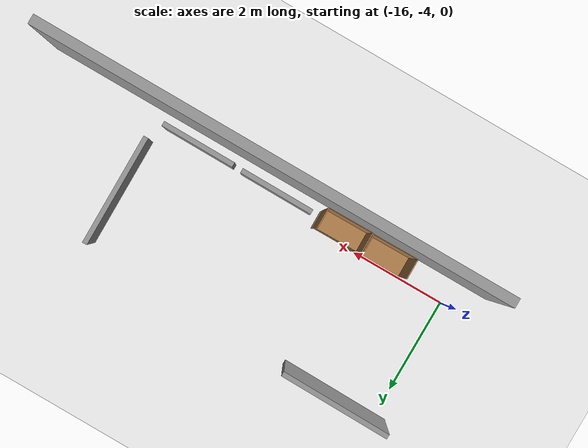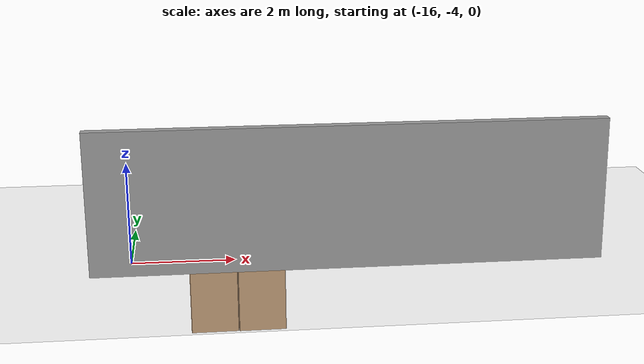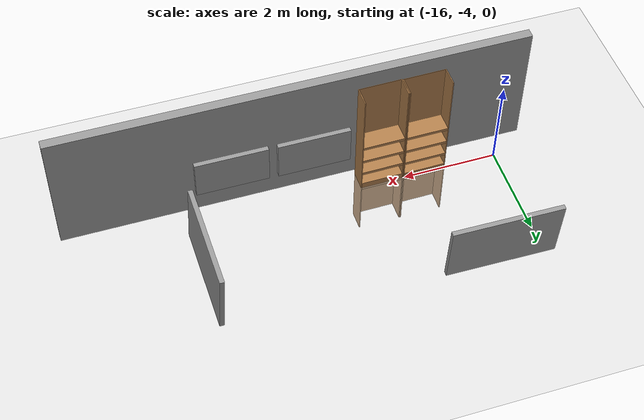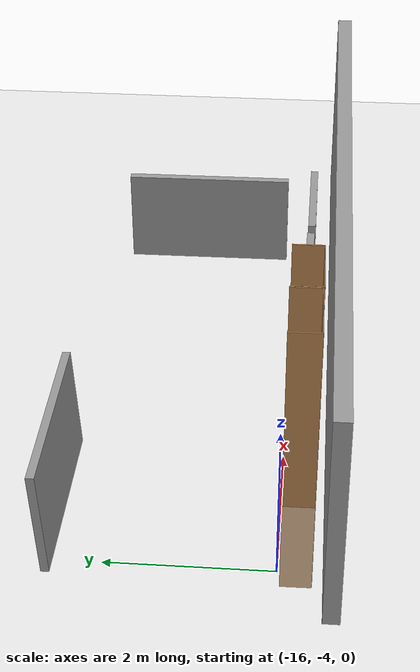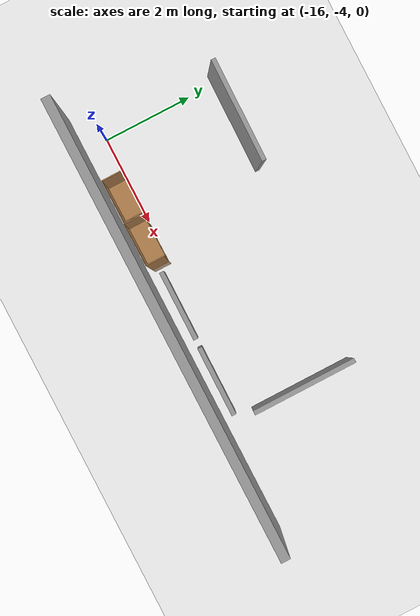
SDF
<sdf version="1.6">
 <world name="default">
  <model name="ground_plane">
   <static>1</static>
   <link name="link">
    <collision name="collision">
     <geometry><plane><normal>0 0 1</normal><size>100 100</size></plane></geometry>
     <surface><friction><ode><mu>100</mu><mu2>50</mu2></ode></friction></surface>
    </collision>
    <visual name="visual">
     <cast_shadows>0</cast_shadows>
     <geometry><plane><normal>0 0 1</normal><size>100 100</size></plane></geometry>
     <material>
      <script><uri>file://media/materials/scripts/gazebo.material</uri><name>Gazebo/Grey</name></script>
     </material>
    </visual>
   </link>
  </model>
  <model name="grey_wall_clone_clone_0">
   <link name="link">
    <pose>1.17776 -0.11801 1.4 0 -0 0</pose>
    <inertial>
     <mass>1.16346</mass>
     <inertia><ixx>0.764005</ixx><ixy>0</ixy><ixz>0</ixz><iyy>10.2423</iyy><iyz>0</iyz><izz>9.48609</izz></inertia>
    </inertial>
    <visual name="visual">
     <cast_shadows>0</cast_shadows>
     <geometry><box><size>9.8894 0.2 2.8</size></box></geometry>
     <material>
      <script>
       <uri>model://grey_wall/materials/scripts</uri>
       <uri>model://grey_wall/materials/textures</uri>
       <name>vrc/grey_wall</name>
      </script>
      <shader type="vertex"><normal_map>__default__</normal_map></shader>
      <ambient>1 1 1 1</ambient>
      <diffuse>1 1 1 1</diffuse>
      <specular>0 0 0 1</specular>
      <emissive>0 0 0 1</emissive>
     </material>
    </visual>
    <collision name="collision">
     <geometry><box><size>9.8894 0.2 2.8</size></box></geometry>
     <surface>
      <friction>
       <ode><mu>1</mu><mu2>1</mu2><fdir1>0 0 0</fdir1><slip1>0</slip1><slip2>0</slip2></ode>
       <torsional>
        <coefficient>1</coefficient>
        <patch_radius>0</patch_radius>
        <surface_radius>0</surface_radius>
        <use_patch_radius>1</use_patch_radius>
        <ode><slip>0</slip></ode>
       </torsional>
      </friction>
      <bounce><restitution_coefficient>0</restitution_coefficient><threshold>1e+06</threshold></bounce>
      <contact>
       <collide_without_contact>0</collide_without_contact>
       <collide_without_contact_bitmask>1</collide_without_contact_bitmask>
       <collide_bitmask>1</collide_bitmask>
       <ode>
        <soft_cfm>0</soft_cfm>
        <soft_erp>0.2</soft_erp>
        <kp>1e+13</kp>
        <kd>1</kd>
        <max_vel>0.01</max_vel>
        <min_depth>0</min_depth>
       </ode>
       <bullet>
        <split_impulse>1</split_impulse>
        <split_impulse_penetration_threshold>-0.01</split_impulse_penetration_threshold>
        <soft_cfm>0</soft_cfm>
        <soft_erp>0.2</soft_erp>
        <kp>1e+13</kp>
        <kd>1</kd>
       </bullet>
      </contact>
     </surface>
    </collision>
   </link>
   <static>1</static>
   <pose>-12.9856 -4.50194 0 0 -0 0</pose>
  </model>
  <model name="unit_box_clone_0_clone_clone_0">
   <link name="link">
    <inertial>
     <mass>0.724105</mass>
     <inertia>
      <ixx>0.0453015</ixx>
      <ixy>0</ixy>
      <ixz>0</ixz>
      <iyy>0.183143</iyy>
      <iyz>0</iyz>
      <izz>0.139048</izz>
     </inertia>
    </inertial>
    <pose>0.262043 -0.534144 0 0 -0 1.59038</pose>
    <visual name="visual">
     <geometry><box><size>1.5147 0.1 0.860665</size></box></geometry>
     <material>
      <script><name>Gazebo/Grey</name><uri>file://media/materials/scripts/gazebo.material</uri></script>
      <shader type="vertex"><normal_map>__default__</normal_map></shader>
      <ambient>0 0 0 1</ambient>
      <diffuse>0 0 0 1</diffuse>
      <specular>0.01 0.01 0.01 1</specular>
      <emissive>0 0 0 1</emissive>
     </material>
    </visual>
    <collision name="collision">
     <geometry><box><size>1.5147 0.1 0.860665</size></box></geometry>
     <surface>
      <friction>
       <ode><mu>1</mu><mu2>1</mu2><fdir1>0 0 0</fdir1><slip1>0</slip1><slip2>0</slip2></ode>
       <torsional>
        <coefficient>1</coefficient>
        <patch_radius>0</patch_radius>
        <surface_radius>0</surface_radius>
        <use_patch_radius>1</use_patch_radius>
        <ode><slip>0</slip></ode>
       </torsional>
      </friction>
      <bounce><restitution_coefficient>0</restitution_coefficient><threshold>1e+06</threshold></bounce>
      <contact>
       <collide_without_contact>0</collide_without_contact>
       <collide_without_contact_bitmask>1</collide_without_contact_bitmask>
       <collide_bitmask>1</collide_bitmask>
       <ode>
        <soft_cfm>0</soft_cfm>
        <soft_erp>0.2</soft_erp>
        <kp>1e+13</kp>
        <kd>1</kd>
        <max_vel>0.01</max_vel>
        <min_depth>0</min_depth>
       </ode>
       <bullet>
        <split_impulse>1</split_impulse>
        <split_impulse_penetration_threshold>-0.01</split_impulse_penetration_threshold>
        <soft_cfm>0</soft_cfm>
        <soft_erp>0.2</soft_erp>
        <kp>1e+13</kp>
        <kd>1</kd>
       </bullet>
      </contact>
     </surface>
    </collision>
   </link>
   <static>1</static>
   <pose>-9.85653 -3.99567 1.22283 0.000117 -0.002185 -1.59437</pose>
  </model>
  <model name="unit_box_clone_0_clone_clone_clone_0_clone_clone">
   <link name="link">
    <inertial>
     <mass>1.76092</mass>
     <inertia><ixx>0.27833</ixx><ixy>0</ixy><ixz>0</ixz><iyy>1.05856</iyy><iyz>0</iyz><izz>0.783161</izz></inertia>
    </inertial>
    <pose>0.262043 -0.534144 -0 0 -0 1.59038</pose>
    <visual name="visual">
     <geometry><box><size>2.30802 0.1 1.37358</size></box></geometry>
     <material>
      <script><name>Gazebo/Grey</name><uri>file://media/materials/scripts/gazebo.material</uri></script>
      <shader type="vertex"><normal_map>__default__</normal_map></shader>
      <ambient>0.8 0.8 0.8 1</ambient>
      <diffuse>0 0 0 1</diffuse>
      <specular>0.01 0.01 0.01 1</specular>
      <emissive>0 0 0 1</emissive>
     </material>
    </visual>
    <collision name="collision">
     <geometry><box><size>2.30802 0.1 1.37358</size></box></geometry>
     <surface>
      <friction>
       <ode><mu>1</mu><mu2>1</mu2><fdir1>0 0 0</fdir1><slip1>0</slip1><slip2>0</slip2></ode>
       <torsional>
        <coefficient>1</coefficient>
        <patch_radius>0</patch_radius>
        <surface_radius>0</surface_radius>
        <use_patch_radius>1</use_patch_radius>
        <ode><slip>0</slip></ode>
       </torsional>
      </friction>
      <bounce><restitution_coefficient>0</restitution_coefficient><threshold>1e+06</threshold></bounce>
      <contact>
       <collide_without_contact>0</collide_without_contact>
       <collide_without_contact_bitmask>1</collide_without_contact_bitmask>
       <collide_bitmask>1</collide_bitmask>
       <ode>
        <soft_cfm>0</soft_cfm>
        <soft_erp>0.2</soft_erp>
        <kp>1e+13</kp>
        <kd>1</kd>
        <max_vel>0.01</max_vel>
        <min_depth>0</min_depth>
       </ode>
       <bullet>
        <split_impulse>1</split_impulse>
        <split_impulse_penetration_threshold>-0.01</split_impulse_penetration_threshold>
        <soft_cfm>0</soft_cfm>
        <soft_erp>0.2</soft_erp>
        <kp>1e+13</kp>
        <kd>1</kd>
       </bullet>
      </contact>
     </surface>
    </collision>
   </link>
   <static>1</static>
   <pose>-9.68625 -2.18324 0.688928 0.000802 -0.047021 -0.014366</pose>
  </model>
  <model name="bookshelf_0">
   <link name="link">
    <inertial>
     <mass>3.22474</mass>
     <inertia>
      <ixx>0.0441157</ixx>
      <ixy>0</ixy>
      <ixz>0</ixz>
      <iyy>0.209222</iyy>
      <iyz>0</iyz>
      <izz>0.2511</izz>
     </inertia>
    </inertial>
    <pose>0 0 0 0 0 -3.13313</pose>
    <visual name="visual1">
     <pose>0 0.005 0.6 0 -0 0</pose>
     <geometry><box><size>0.9 0.01 3.8752</size></box></geometry>
     <material>
      <script><uri>file://media/materials/scripts/gazebo.material</uri><name>Gazebo/Wood</name></script>
     </material>
    </visual>
    <visual name="visual2">
     <pose>0.45 -0.195 0.6 0 -0 0</pose>
     <geometry><box><size>0.02 0.4 3.8752</size></box></geometry>
     <material>
      <script><uri>file://media/materials/scripts/gazebo.material</uri><name>Gazebo/Wood</name></script>
     </material>
    </visual>
    <visual name="visual3">
     <pose>-0.45 -0.195 0.6 0 -0 0</pose>
     <geometry><box><size>0.02 0.4 3.8752</size></box></geometry>
     <material>
      <script><uri>file://media/materials/scripts/gazebo.material</uri><name>Gazebo/Wood</name></script>
     </material>
    </visual>
    <visual name="visual4">
     <pose>0 -0.195 0.03 0 -0 0</pose>
     <geometry><box><size>0.88 0.4 0.193307</size></box></geometry>
     <material>
      <script><uri>file://media/materials/scripts/gazebo.material</uri><name>Gazebo/Wood</name></script>
     </material>
    </visual>
    <visual name="visual5">
     <pose>0 -0.195 1.19 0 -0 0</pose>
     <geometry><box><size>0.88 0.4 0.064536</size></box></geometry>
     <material>
      <script><uri>file://media/materials/scripts/gazebo.material</uri><name>Gazebo/Wood</name></script>
     </material>
    </visual>
    <visual name="visual6">
     <pose>0 -0.195 0.43 0 -0 0</pose>
     <geometry><box><size>0.88 0.4 0.064536</size></box></geometry>
     <material>
      <script><uri>file://media/materials/scripts/gazebo.material</uri><name>Gazebo/Wood</name></script>
     </material>
    </visual>
    <visual name="visual7">
     <pose>0 -0.195 0.8 0 -0 0</pose>
     <geometry><box><size>0.88 0.4 0.064536</size></box></geometry>
     <material>
      <script><uri>file://media/materials/scripts/gazebo.material</uri><name>Gazebo/Wood</name></script>
     </material>
    </visual>
    <collision name="back">
     <pose>0 0.005 0.6 0 -0 0</pose>
     <geometry><box><size>0.9 0.01 3.8752</size></box></geometry>
     <surface>
      <friction>
       <ode><mu>1</mu><mu2>1</mu2><fdir1>0 0 0</fdir1><slip1>0</slip1><slip2>0</slip2></ode>
       <torsional>
        <coefficient>1</coefficient>
        <patch_radius>0</patch_radius>
        <surface_radius>0</surface_radius>
        <use_patch_radius>1</use_patch_radius>
        <ode><slip>0</slip></ode>
       </torsional>
      </friction>
      <bounce><restitution_coefficient>0</restitution_coefficient><threshold>1e+06</threshold></bounce>
      <contact>
       <collide_without_contact>0</collide_without_contact>
       <collide_without_contact_bitmask>1</collide_without_contact_bitmask>
       <collide_bitmask>1</collide_bitmask>
       <ode>
        <soft_cfm>0</soft_cfm>
        <soft_erp>0.2</soft_erp>
        <kp>1e+13</kp>
        <kd>1</kd>
        <max_vel>0.01</max_vel>
        <min_depth>0</min_depth>
       </ode>
       <bullet>
        <split_impulse>1</split_impulse>
        <split_impulse_penetration_threshold>-0.01</split_impulse_penetration_threshold>
        <soft_cfm>0</soft_cfm>
        <soft_erp>0.2</soft_erp>
        <kp>1e+13</kp>
        <kd>1</kd>
       </bullet>
      </contact>
     </surface>
    </collision>
    <collision name="left_side">
     <pose>0.45 -0.195 0.6 0 -0 0</pose>
     <geometry><box><size>0.02 0.4 3.8752</size></box></geometry>
     <surface>
      <friction>
       <ode><mu>1</mu><mu2>1</mu2><fdir1>0 0 0</fdir1><slip1>0</slip1><slip2>0</slip2></ode>
       <torsional>
        <coefficient>1</coefficient>
        <patch_radius>0</patch_radius>
        <surface_radius>0</surface_radius>
        <use_patch_radius>1</use_patch_radius>
        <ode><slip>0</slip></ode>
       </torsional>
      </friction>
      <bounce><restitution_coefficient>0</restitution_coefficient><threshold>1e+06</threshold></bounce>
      <contact>
       <collide_without_contact>0</collide_without_contact>
       <collide_without_contact_bitmask>1</collide_without_contact_bitmask>
       <collide_bitmask>1</collide_bitmask>
       <ode>
        <soft_cfm>0</soft_cfm>
        <soft_erp>0.2</soft_erp>
        <kp>1e+13</kp>
        <kd>1</kd>
        <max_vel>0.01</max_vel>
        <min_depth>0</min_depth>
       </ode>
       <bullet>
        <split_impulse>1</split_impulse>
        <split_impulse_penetration_threshold>-0.01</split_impulse_penetration_threshold>
        <soft_cfm>0</soft_cfm>
        <soft_erp>0.2</soft_erp>
        <kp>1e+13</kp>
        <kd>1</kd>
       </bullet>
      </contact>
     </surface>
    </collision>
    <collision name="right_side">
     <pose>-0.45 -0.195 0.6 0 -0 0</pose>
     <geometry><box><size>0.02 0.4 3.8752</size></box></geometry>
     <surface>
      <friction>
       <ode><mu>1</mu><mu2>1</mu2><fdir1>0 0 0</fdir1><slip1>0</slip1><slip2>0</slip2></ode>
       <torsional>
        <coefficient>1</coefficient>
        <patch_radius>0</patch_radius>
        <surface_radius>0</surface_radius>
        <use_patch_radius>1</use_patch_radius>
        <ode><slip>0</slip></ode>
       </torsional>
      </friction>
      <bounce><restitution_coefficient>0</restitution_coefficient><threshold>1e+06</threshold></bounce>
      <contact>
       <collide_without_contact>0</collide_without_contact>
       <collide_without_contact_bitmask>1</collide_without_contact_bitmask>
       <collide_bitmask>1</collide_bitmask>
       <ode>
        <soft_cfm>0</soft_cfm>
        <soft_erp>0.2</soft_erp>
        <kp>1e+13</kp>
        <kd>1</kd>
        <max_vel>0.01</max_vel>
        <min_depth>0</min_depth>
       </ode>
       <bullet>
        <split_impulse>1</split_impulse>
        <split_impulse_penetration_threshold>-0.01</split_impulse_penetration_threshold>
        <soft_cfm>0</soft_cfm>
        <soft_erp>0.2</soft_erp>
        <kp>1e+13</kp>
        <kd>1</kd>
       </bullet>
      </contact>
     </surface>
    </collision>
    <collision name="bottom">
     <pose>0 -0.195 0.03 0 -0 0</pose>
     <geometry><box><size>0.88 0.4 0.193307</size></box></geometry>
     <surface>
      <friction>
       <ode><mu>1</mu><mu2>1</mu2><fdir1>0 0 0</fdir1><slip1>0</slip1><slip2>0</slip2></ode>
       <torsional>
        <coefficient>1</coefficient>
        <patch_radius>0</patch_radius>
        <surface_radius>0</surface_radius>
        <use_patch_radius>1</use_patch_radius>
        <ode><slip>0</slip></ode>
       </torsional>
      </friction>
      <bounce><restitution_coefficient>0</restitution_coefficient><threshold>1e+06</threshold></bounce>
      <contact>
       <collide_without_contact>0</collide_without_contact>
       <collide_without_contact_bitmask>1</collide_without_contact_bitmask>
       <collide_bitmask>1</collide_bitmask>
       <ode>
        <soft_cfm>0</soft_cfm>
        <soft_erp>0.2</soft_erp>
        <kp>1e+13</kp>
        <kd>1</kd>
        <max_vel>0.01</max_vel>
        <min_depth>0</min_depth>
       </ode>
       <bullet>
        <split_impulse>1</split_impulse>
        <split_impulse_penetration_threshold>-0.01</split_impulse_penetration_threshold>
        <soft_cfm>0</soft_cfm>
        <soft_erp>0.2</soft_erp>
        <kp>1e+13</kp>
        <kd>1</kd>
       </bullet>
      </contact>
     </surface>
    </collision>
    <collision name="top">
     <pose>0 -0.195 1.19 0 -0 0</pose>
     <geometry><box><size>0.88 0.4 0.064536</size></box></geometry>
     <surface>
      <friction>
       <ode><mu>1</mu><mu2>1</mu2><fdir1>0 0 0</fdir1><slip1>0</slip1><slip2>0</slip2></ode>
       <torsional>
        <coefficient>1</coefficient>
        <patch_radius>0</patch_radius>
        <surface_radius>0</surface_radius>
        <use_patch_radius>1</use_patch_radius>
        <ode><slip>0</slip></ode>
       </torsional>
      </friction>
      <bounce><restitution_coefficient>0</restitution_coefficient><threshold>1e+06</threshold></bounce>
      <contact>
       <collide_without_contact>0</collide_without_contact>
       <collide_without_contact_bitmask>1</collide_without_contact_bitmask>
       <collide_bitmask>1</collide_bitmask>
       <ode>
        <soft_cfm>0</soft_cfm>
        <soft_erp>0.2</soft_erp>
        <kp>1e+13</kp>
        <kd>1</kd>
        <max_vel>0.01</max_vel>
        <min_depth>0</min_depth>
       </ode>
       <bullet>
        <split_impulse>1</split_impulse>
        <split_impulse_penetration_threshold>-0.01</split_impulse_penetration_threshold>
        <soft_cfm>0</soft_cfm>
        <soft_erp>0.2</soft_erp>
        <kp>1e+13</kp>
        <kd>1</kd>
       </bullet>
      </contact>
     </surface>
    </collision>
    <collision name="low_shelf">
     <pose>0 -0.195 0.43 0 -0 0</pose>
     <geometry><box><size>0.88 0.4 0.064536</size></box></geometry>
     <surface>
      <friction>
       <ode><mu>1</mu><mu2>1</mu2><fdir1>0 0 0</fdir1><slip1>0</slip1><slip2>0</slip2></ode>
       <torsional>
        <coefficient>1</coefficient>
        <patch_radius>0</patch_radius>
        <surface_radius>0</surface_radius>
        <use_patch_radius>1</use_patch_radius>
        <ode><slip>0</slip></ode>
       </torsional>
      </friction>
      <bounce><restitution_coefficient>0</restitution_coefficient><threshold>1e+06</threshold></bounce>
      <contact>
       <collide_without_contact>0</collide_without_contact>
       <collide_without_contact_bitmask>1</collide_without_contact_bitmask>
       <collide_bitmask>1</collide_bitmask>
       <ode>
        <soft_cfm>0</soft_cfm>
        <soft_erp>0.2</soft_erp>
        <kp>1e+13</kp>
        <kd>1</kd>
        <max_vel>0.01</max_vel>
        <min_depth>0</min_depth>
       </ode>
       <bullet>
        <split_impulse>1</split_impulse>
        <split_impulse_penetration_threshold>-0.01</split_impulse_penetration_threshold>
        <soft_cfm>0</soft_cfm>
        <soft_erp>0.2</soft_erp>
        <kp>1e+13</kp>
        <kd>1</kd>
       </bullet>
      </contact>
     </surface>
    </collision>
    <collision name="high_shelf">
     <pose>0 -0.195 0.8 0 -0 0</pose>
     <geometry><box><size>0.88 0.4 0.064536</size></box></geometry>
     <surface>
      <friction>
       <ode><mu>1</mu><mu2>1</mu2><fdir1>0 0 0</fdir1><slip1>0</slip1><slip2>0</slip2></ode>
       <torsional>
        <coefficient>1</coefficient>
        <patch_radius>0</patch_radius>
        <surface_radius>0</surface_radius>
        <use_patch_radius>1</use_patch_radius>
        <ode><slip>0</slip></ode>
       </torsional>
      </friction>
      <bounce><restitution_coefficient>0</restitution_coefficient><threshold>1e+06</threshold></bounce>
      <contact>
       <collide_without_contact>0</collide_without_contact>
       <collide_without_contact_bitmask>1</collide_without_contact_bitmask>
       <collide_bitmask>1</collide_bitmask>
       <ode>
        <soft_cfm>0</soft_cfm>
        <soft_erp>0.2</soft_erp>
        <kp>1e+13</kp>
        <kd>1</kd>
        <max_vel>0.01</max_vel>
        <min_depth>0</min_depth>
       </ode>
       <bullet>
        <split_impulse>1</split_impulse>
        <split_impulse_penetration_threshold>-0.01</split_impulse_penetration_threshold>
        <soft_cfm>0</soft_cfm>
        <soft_erp>0.2</soft_erp>
        <kp>1e+13</kp>
        <kd>1</kd>
       </bullet>
      </contact>
     </surface>
    </collision>
   </link>
   <static>1</static>
   <pose>-13.5081 -4.40794 0 0 -0 0</pose>
  </model>
  <model name="bookshelf_0_clone">
   <link name="link">
    <inertial>
     <mass>3.22474</mass>
     <inertia>
      <ixx>0.0441157</ixx>
      <ixy>0</ixy>
      <ixz>0</ixz>
      <iyy>0.209222</iyy>
      <iyz>0</iyz>
      <izz>0.2511</izz>
     </inertia>
    </inertial>
    <pose>0 0 0 0 0 -3.13313</pose>
    <visual name="visual1">
     <pose>0 0.005 0.6 0 -0 0</pose>
     <geometry><box><size>0.9 0.01 3.8752</size></box></geometry>
     <material>
      <script><uri>file://media/materials/scripts/gazebo.material</uri><name>Gazebo/Wood</name></script>
     </material>
    </visual>
    <visual name="visual2">
     <pose>0.45 -0.195 0.6 0 -0 0</pose>
     <geometry><box><size>0.02 0.4 3.8752</size></box></geometry>
     <material>
      <script><uri>file://media/materials/scripts/gazebo.material</uri><name>Gazebo/Wood</name></script>
     </material>
    </visual>
    <visual name="visual3">
     <pose>-0.45 -0.195 0.6 0 -0 0</pose>
     <geometry><box><size>0.02 0.4 3.8752</size></box></geometry>
     <material>
      <script><uri>file://media/materials/scripts/gazebo.material</uri><name>Gazebo/Wood</name></script>
     </material>
    </visual>
    <visual name="visual4">
     <pose>0 -0.195 0.03 0 -0 0</pose>
     <geometry><box><size>0.88 0.4 0.193307</size></box></geometry>
     <material>
      <script><uri>file://media/materials/scripts/gazebo.material</uri><name>Gazebo/Wood</name></script>
     </material>
    </visual>
    <visual name="visual5">
     <pose>0 -0.195 1.19 0 -0 0</pose>
     <geometry><box><size>0.88 0.4 0.064536</size></box></geometry>
     <material>
      <script><uri>file://media/materials/scripts/gazebo.material</uri><name>Gazebo/Wood</name></script>
     </material>
    </visual>
    <visual name="visual6">
     <pose>0 -0.195 0.43 0 -0 0</pose>
     <geometry><box><size>0.88 0.4 0.064536</size></box></geometry>
     <material>
      <script><uri>file://media/materials/scripts/gazebo.material</uri><name>Gazebo/Wood</name></script>
     </material>
    </visual>
    <visual name="visual7">
     <pose>0 -0.195 0.8 0 -0 0</pose>
     <geometry><box><size>0.88 0.4 0.064536</size></box></geometry>
     <material>
      <script><uri>file://media/materials/scripts/gazebo.material</uri><name>Gazebo/Wood</name></script>
     </material>
    </visual>
    <collision name="back">
     <pose>0 0.005 0.6 0 -0 0</pose>
     <geometry><box><size>0.9 0.01 3.8752</size></box></geometry>
     <surface>
      <friction>
       <ode><mu>1</mu><mu2>1</mu2><fdir1>0 0 0</fdir1><slip1>0</slip1><slip2>0</slip2></ode>
       <torsional>
        <coefficient>1</coefficient>
        <patch_radius>0</patch_radius>
        <surface_radius>0</surface_radius>
        <use_patch_radius>1</use_patch_radius>
        <ode><slip>0</slip></ode>
       </torsional>
      </friction>
      <bounce><restitution_coefficient>0</restitution_coefficient><threshold>1e+06</threshold></bounce>
      <contact>
       <collide_without_contact>0</collide_without_contact>
       <collide_without_contact_bitmask>1</collide_without_contact_bitmask>
       <collide_bitmask>1</collide_bitmask>
       <ode>
        <soft_cfm>0</soft_cfm>
        <soft_erp>0.2</soft_erp>
        <kp>1e+13</kp>
        <kd>1</kd>
        <max_vel>0.01</max_vel>
        <min_depth>0</min_depth>
       </ode>
       <bullet>
        <split_impulse>1</split_impulse>
        <split_impulse_penetration_threshold>-0.01</split_impulse_penetration_threshold>
        <soft_cfm>0</soft_cfm>
        <soft_erp>0.2</soft_erp>
        <kp>1e+13</kp>
        <kd>1</kd>
       </bullet>
      </contact>
     </surface>
    </collision>
    <collision name="left_side">
     <pose>0.45 -0.195 0.6 0 -0 0</pose>
     <geometry><box><size>0.02 0.4 3.8752</size></box></geometry>
     <surface>
      <friction>
       <ode><mu>1</mu><mu2>1</mu2><fdir1>0 0 0</fdir1><slip1>0</slip1><slip2>0</slip2></ode>
       <torsional>
        <coefficient>1</coefficient>
        <patch_radius>0</patch_radius>
        <surface_radius>0</surface_radius>
        <use_patch_radius>1</use_patch_radius>
        <ode><slip>0</slip></ode>
       </torsional>
      </friction>
      <bounce><restitution_coefficient>0</restitution_coefficient><threshold>1e+06</threshold></bounce>
      <contact>
       <collide_without_contact>0</collide_without_contact>
       <collide_without_contact_bitmask>1</collide_without_contact_bitmask>
       <collide_bitmask>1</collide_bitmask>
       <ode>
        <soft_cfm>0</soft_cfm>
        <soft_erp>0.2</soft_erp>
        <kp>1e+13</kp>
        <kd>1</kd>
        <max_vel>0.01</max_vel>
        <min_depth>0</min_depth>
       </ode>
       <bullet>
        <split_impulse>1</split_impulse>
        <split_impulse_penetration_threshold>-0.01</split_impulse_penetration_threshold>
        <soft_cfm>0</soft_cfm>
        <soft_erp>0.2</soft_erp>
        <kp>1e+13</kp>
        <kd>1</kd>
       </bullet>
      </contact>
     </surface>
    </collision>
    <collision name="right_side">
     <pose>-0.45 -0.195 0.6 0 -0 0</pose>
     <geometry><box><size>0.02 0.4 3.8752</size></box></geometry>
     <surface>
      <friction>
       <ode><mu>1</mu><mu2>1</mu2><fdir1>0 0 0</fdir1><slip1>0</slip1><slip2>0</slip2></ode>
       <torsional>
        <coefficient>1</coefficient>
        <patch_radius>0</patch_radius>
        <surface_radius>0</surface_radius>
        <use_patch_radius>1</use_patch_radius>
        <ode><slip>0</slip></ode>
       </torsional>
      </friction>
      <bounce><restitution_coefficient>0</restitution_coefficient><threshold>1e+06</threshold></bounce>
      <contact>
       <collide_without_contact>0</collide_without_contact>
       <collide_without_contact_bitmask>1</collide_without_contact_bitmask>
       <collide_bitmask>1</collide_bitmask>
       <ode>
        <soft_cfm>0</soft_cfm>
        <soft_erp>0.2</soft_erp>
        <kp>1e+13</kp>
        <kd>1</kd>
        <max_vel>0.01</max_vel>
        <min_depth>0</min_depth>
       </ode>
       <bullet>
        <split_impulse>1</split_impulse>
        <split_impulse_penetration_threshold>-0.01</split_impulse_penetration_threshold>
        <soft_cfm>0</soft_cfm>
        <soft_erp>0.2</soft_erp>
        <kp>1e+13</kp>
        <kd>1</kd>
       </bullet>
      </contact>
     </surface>
    </collision>
    <collision name="bottom">
     <pose>0 -0.195 0.03 0 -0 0</pose>
     <geometry><box><size>0.88 0.4 0.193307</size></box></geometry>
     <surface>
      <friction>
       <ode><mu>1</mu><mu2>1</mu2><fdir1>0 0 0</fdir1><slip1>0</slip1><slip2>0</slip2></ode>
       <torsional>
        <coefficient>1</coefficient>
        <patch_radius>0</patch_radius>
        <surface_radius>0</surface_radius>
        <use_patch_radius>1</use_patch_radius>
        <ode><slip>0</slip></ode>
       </torsional>
      </friction>
      <bounce><restitution_coefficient>0</restitution_coefficient><threshold>1e+06</threshold></bounce>
      <contact>
       <collide_without_contact>0</collide_without_contact>
       <collide_without_contact_bitmask>1</collide_without_contact_bitmask>
       <collide_bitmask>1</collide_bitmask>
       <ode>
        <soft_cfm>0</soft_cfm>
        <soft_erp>0.2</soft_erp>
        <kp>1e+13</kp>
        <kd>1</kd>
        <max_vel>0.01</max_vel>
        <min_depth>0</min_depth>
       </ode>
       <bullet>
        <split_impulse>1</split_impulse>
        <split_impulse_penetration_threshold>-0.01</split_impulse_penetration_threshold>
        <soft_cfm>0</soft_cfm>
        <soft_erp>0.2</soft_erp>
        <kp>1e+13</kp>
        <kd>1</kd>
       </bullet>
      </contact>
     </surface>
    </collision>
    <collision name="top">
     <pose>0 -0.195 1.19 0 -0 0</pose>
     <geometry><box><size>0.88 0.4 0.064536</size></box></geometry>
     <surface>
      <friction>
       <ode><mu>1</mu><mu2>1</mu2><fdir1>0 0 0</fdir1><slip1>0</slip1><slip2>0</slip2></ode>
       <torsional>
        <coefficient>1</coefficient>
        <patch_radius>0</patch_radius>
        <surface_radius>0</surface_radius>
        <use_patch_radius>1</use_patch_radius>
        <ode><slip>0</slip></ode>
       </torsional>
      </friction>
      <bounce><restitution_coefficient>0</restitution_coefficient><threshold>1e+06</threshold></bounce>
      <contact>
       <collide_without_contact>0</collide_without_contact>
       <collide_without_contact_bitmask>1</collide_without_contact_bitmask>
       <collide_bitmask>1</collide_bitmask>
       <ode>
        <soft_cfm>0</soft_cfm>
        <soft_erp>0.2</soft_erp>
        <kp>1e+13</kp>
        <kd>1</kd>
        <max_vel>0.01</max_vel>
        <min_depth>0</min_depth>
       </ode>
       <bullet>
        <split_impulse>1</split_impulse>
        <split_impulse_penetration_threshold>-0.01</split_impulse_penetration_threshold>
        <soft_cfm>0</soft_cfm>
        <soft_erp>0.2</soft_erp>
        <kp>1e+13</kp>
        <kd>1</kd>
       </bullet>
      </contact>
     </surface>
    </collision>
    <collision name="low_shelf">
     <pose>0 -0.195 0.43 0 -0 0</pose>
     <geometry><box><size>0.88 0.4 0.064536</size></box></geometry>
     <surface>
      <friction>
       <ode><mu>1</mu><mu2>1</mu2><fdir1>0 0 0</fdir1><slip1>0</slip1><slip2>0</slip2></ode>
       <torsional>
        <coefficient>1</coefficient>
        <patch_radius>0</patch_radius>
        <surface_radius>0</surface_radius>
        <use_patch_radius>1</use_patch_radius>
        <ode><slip>0</slip></ode>
       </torsional>
      </friction>
      <bounce><restitution_coefficient>0</restitution_coefficient><threshold>1e+06</threshold></bounce>
      <contact>
       <collide_without_contact>0</collide_without_contact>
       <collide_without_contact_bitmask>1</collide_without_contact_bitmask>
       <collide_bitmask>1</collide_bitmask>
       <ode>
        <soft_cfm>0</soft_cfm>
        <soft_erp>0.2</soft_erp>
        <kp>1e+13</kp>
        <kd>1</kd>
        <max_vel>0.01</max_vel>
        <min_depth>0</min_depth>
       </ode>
       <bullet>
        <split_impulse>1</split_impulse>
        <split_impulse_penetration_threshold>-0.01</split_impulse_penetration_threshold>
        <soft_cfm>0</soft_cfm>
        <soft_erp>0.2</soft_erp>
        <kp>1e+13</kp>
        <kd>1</kd>
       </bullet>
      </contact>
     </surface>
    </collision>
    <collision name="high_shelf">
     <pose>0 -0.195 0.8 0 -0 0</pose>
     <geometry><box><size>0.88 0.4 0.064536</size></box></geometry>
     <surface>
      <friction>
       <ode><mu>1</mu><mu2>1</mu2><fdir1>0 0 0</fdir1><slip1>0</slip1><slip2>0</slip2></ode>
       <torsional>
        <coefficient>1</coefficient>
        <patch_radius>0</patch_radius>
        <surface_radius>0</surface_radius>
        <use_patch_radius>1</use_patch_radius>
        <ode><slip>0</slip></ode>
       </torsional>
      </friction>
      <bounce><restitution_coefficient>0</restitution_coefficient><threshold>1e+06</threshold></bounce>
      <contact>
       <collide_without_contact>0</collide_without_contact>
       <collide_without_contact_bitmask>1</collide_without_contact_bitmask>
       <collide_bitmask>1</collide_bitmask>
       <ode>
        <soft_cfm>0</soft_cfm>
        <soft_erp>0.2</soft_erp>
        <kp>1e+13</kp>
        <kd>1</kd>
        <max_vel>0.01</max_vel>
        <min_depth>0</min_depth>
       </ode>
       <bullet>
        <split_impulse>1</split_impulse>
        <split_impulse_penetration_threshold>-0.01</split_impulse_penetration_threshold>
        <soft_cfm>0</soft_cfm>
        <soft_erp>0.2</soft_erp>
        <kp>1e+13</kp>
        <kd>1</kd>
       </bullet>
      </contact>
     </surface>
    </collision>
   </link>
   <static>1</static>
   <pose>-14.4347 -4.4046 0 0 -0 0</pose>
  </model>
  <model name="unit_box_clone_0_clone_clone_0_clone">
   <link name="link">
    <inertial>
     <mass>0.724105</mass>
     <inertia>
      <ixx>0.0453015</ixx>
      <ixy>0</ixy>
      <ixz>0</ixz>
      <iyy>0.183143</iyy>
      <iyz>0</iyz>
      <izz>0.139048</izz>
     </inertia>
    </inertial>
    <pose>0.262043 -0.534144 0 0 -0 1.59038</pose>
    <visual name="visual">
     <geometry><box><size>1.5147 0.1 0.860665</size></box></geometry>
     <material>
      <script><name>Gazebo/Grey</name><uri>file://media/materials/scripts/gazebo.material</uri></script>
      <shader type="vertex"><normal_map>__default__</normal_map></shader>
      <ambient>0 0 0 1</ambient>
      <diffuse>0 0 0 1</diffuse>
      <specular>0.01 0.01 0.01 1</specular>
      <emissive>0 0 0 1</emissive>
     </material>
    </visual>
    <collision name="collision">
     <geometry><box><size>1.5147 0.1 0.860665</size></box></geometry>
     <surface>
      <friction>
       <ode><mu>1</mu><mu2>1</mu2><fdir1>0 0 0</fdir1><slip1>0</slip1><slip2>0</slip2></ode>
       <torsional>
        <coefficient>1</coefficient>
        <patch_radius>0</patch_radius>
        <surface_radius>0</surface_radius>
        <use_patch_radius>1</use_patch_radius>
        <ode><slip>0</slip></ode>
       </torsional>
      </friction>
      <bounce><restitution_coefficient>0</restitution_coefficient><threshold>1e+06</threshold></bounce>
      <contact>
       <collide_without_contact>0</collide_without_contact>
       <collide_without_contact_bitmask>1</collide_without_contact_bitmask>
       <collide_bitmask>1</collide_bitmask>
       <ode>
        <soft_cfm>0</soft_cfm>
        <soft_erp>0.2</soft_erp>
        <kp>1e+13</kp>
        <kd>1</kd>
        <max_vel>0.01</max_vel>
        <min_depth>0</min_depth>
       </ode>
       <bullet>
        <split_impulse>1</split_impulse>
        <split_impulse_penetration_threshold>-0.01</split_impulse_penetration_threshold>
        <soft_cfm>0</soft_cfm>
        <soft_erp>0.2</soft_erp>
        <kp>1e+13</kp>
        <kd>1</kd>
       </bullet>
      </contact>
     </surface>
    </collision>
   </link>
   <static>1</static>
   <pose>-11.5537 -3.97768 1.22548 0.000117 -0.002185 -1.59437</pose>
  </model>
  <model name="unit_box_clone_0_clone_clone_clone_0_clone_clone_0_clone">
   <link name="link">
    <inertial>
     <mass>1.76092</mass>
     <inertia><ixx>0.27833</ixx><ixy>0</ixy><ixz>0</ixz><iyy>1.05856</iyy><iyz>0</iyz><izz>0.783161</izz></inertia>
    </inertial>
    <pose>0.262043 -0.534144 -0 0 -0 1.59038</pose>
    <visual name="visual">
     <geometry><box><size>2.30802 0.1 1.37358</size></box></geometry>
     <material>
      <script><name>Gazebo/Grey</name><uri>file://media/materials/scripts/gazebo.material</uri></script>
      <shader type="vertex"><normal_map>__default__</normal_map></shader>
      <ambient>0.8 0.8 0.8 1</ambient>
      <diffuse>0 0 0 1</diffuse>
      <specular>0.01 0.01 0.01 1</specular>
      <emissive>0 0 0 1</emissive>
     </material>
    </visual>
    <collision name="collision">
     <geometry><box><size>2.30802 0.1 1.37358</size></box></geometry>
     <surface>
      <friction>
       <ode><mu>1</mu><mu2>1</mu2><fdir1>0 0 0</fdir1><slip1>0</slip1><slip2>0</slip2></ode>
       <torsional>
        <coefficient>1</coefficient>
        <patch_radius>0</patch_radius>
        <surface_radius>0</surface_radius>
        <use_patch_radius>1</use_patch_radius>
        <ode><slip>0</slip></ode>
       </torsional>
      </friction>
      <bounce><restitution_coefficient>0</restitution_coefficient><threshold>1e+06</threshold></bounce>
      <contact>
       <collide_without_contact>0</collide_without_contact>
       <collide_without_contact_bitmask>1</collide_without_contact_bitmask>
       <collide_bitmask>1</collide_bitmask>
       <ode>
        <soft_cfm>0</soft_cfm>
        <soft_erp>0.2</soft_erp>
        <kp>1e+13</kp>
        <kd>1</kd>
        <max_vel>0.01</max_vel>
        <min_depth>0</min_depth>
       </ode>
       <bullet>
        <split_impulse>1</split_impulse>
        <split_impulse_penetration_threshold>-0.01</split_impulse_penetration_threshold>
        <soft_cfm>0</soft_cfm>
        <soft_erp>0.2</soft_erp>
        <kp>1e+13</kp>
        <kd>1</kd>
       </bullet>
      </contact>
     </surface>
    </collision>
   </link>
   <static>1</static>
   <pose>-14.5207 -1.11915 0.70009 0.004656 -0.058476 -1.60278</pose>
  </model>
 </world>
</sdf>
